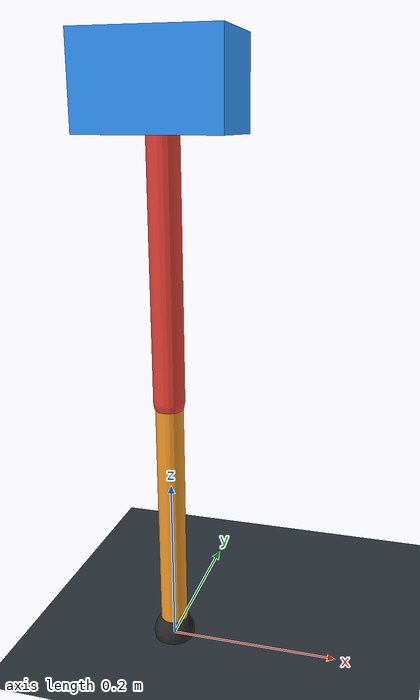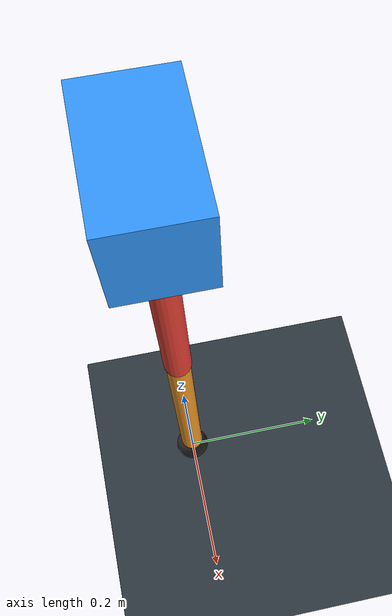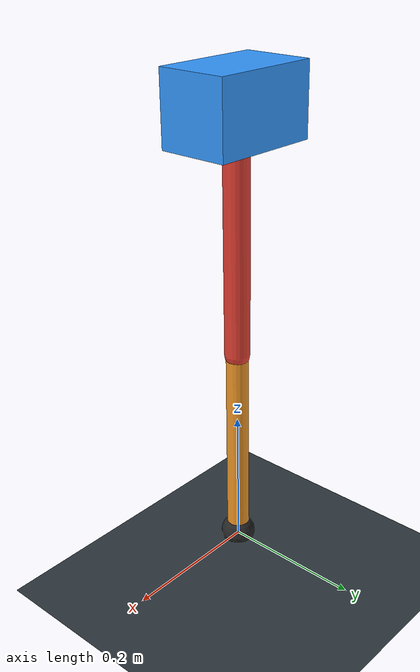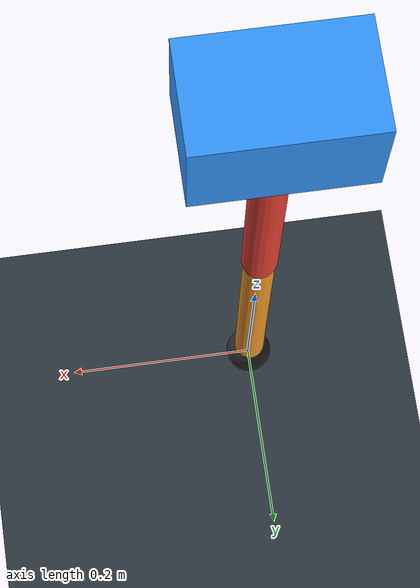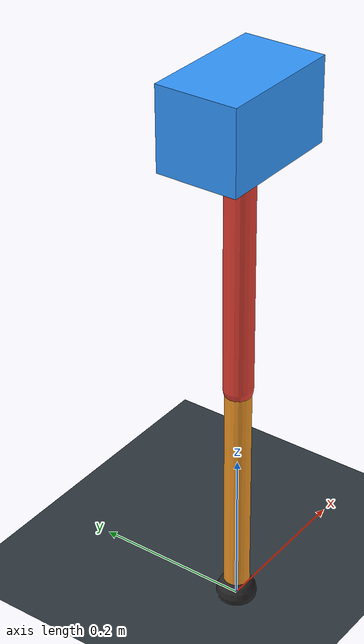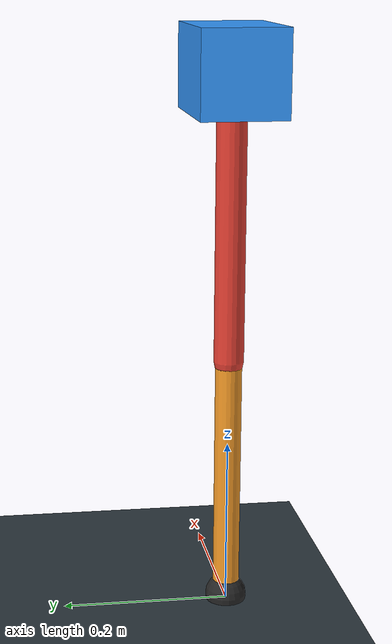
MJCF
<mujoco model="single_axis_two_bar">
  <compiler angle="radian" inertiafromgeom="true"/>
  <option timestep="0.001" integrator="implicitfast" gravity="0 0 -9.81"/>
  <default>
    <joint damping="0.08"/>
    <geom friction="1.2 0.01 0.0001" condim="3"/>
  </default>
  <worldbody>
    <geom name="floor" type="plane" size="5 5 0.1" rgba="0.18 0.22 0.25 1"/>
    <body name="carriage" pos="0 0 0.6475326790168985">
      <joint name="pole_slide" type="slide" axis="0 0 1"/>
      <geom name="payload" type="box" size="0.08 0.05 0.05" mass="2.3998939606565592" rgba="0.2 0.6 1 1"/>
      <body name="thigh" pos="0 0 0">
        <joint name="hip" type="hinge" axis="0 1 0"/>
        <geom name="thigh_link" type="capsule" fromto="0 0 0 0 0 -0.34283336180719054" size="0.018" mass="0.24427330043081244" rgba="0.9 0.25 0.2 1"/>
        <body name="shank" pos="0 0 -0.34283336180719054">
          <joint name="knee" type="hinge" axis="0 1 0"/>
          <geom name="shank_link" type="capsule" fromto="0 0 0 0 0 -0.29895290522053986" size="0.016" mass="0.21300789528374736" rgba="0.95 0.6 0.15 1"/>
          <geom name="foot" type="sphere" pos="0 0 -0.29895290522053986" size="0.025" mass="0.03" rgba="0.15 0.15 0.15 1"/>
          <site name="toe" pos="0 0 -0.29895290522053986" size="0.008"/>
        </body>
      </body>
    </body>
  </worldbody>
  <actuator>
    <motor name="hip_motor" joint="hip" ctrlrange="-24.01459018619754 24.01459018619754"/>
    <motor name="knee_motor" joint="knee" ctrlrange="-104.59103367499524 104.59103367499524"/>
  </actuator>
</mujoco>
